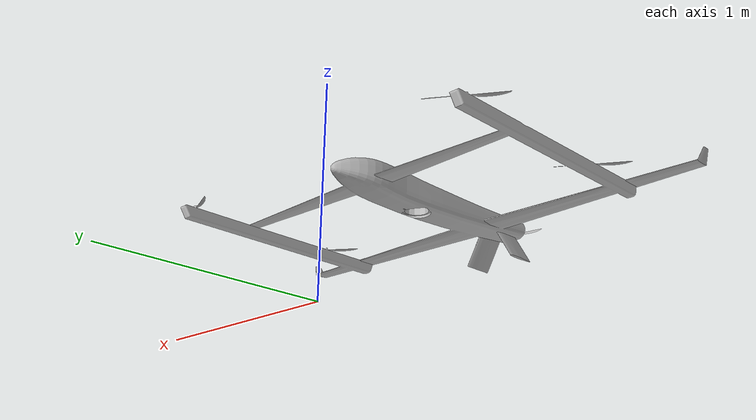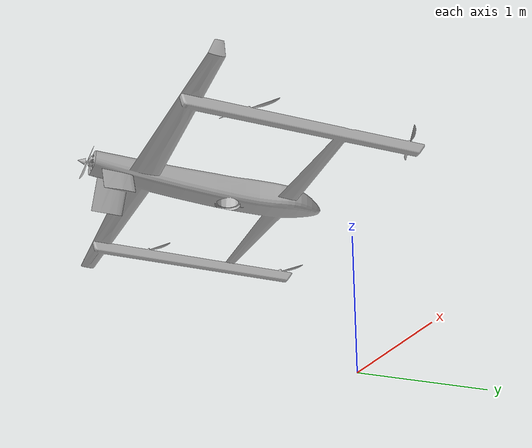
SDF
<sdf version='1.6'>
  <model name='feiji'>
    <link name='base_link'>
      <pose frame=''>0 0 0 0 -0 0</pose>
      <inertial>
        <pose frame=''>0.478428 -0.693665 0.361239 0 -0 0</pose>
        <mass>52.4749</mass>
        <inertia>
          <ixx>22.2086</ixx>
          <ixy>-0.101046</ixy>
          <ixz>0.000688476</ixz>
          <iyy>18.5502</iyy>
          <iyz>-0.0293732</iyz>
          <izz>3.92688</izz>
        </inertia>
      </inertial>
      <collision name='base_link_collision'>
        <pose frame=''>0 0 0 0 -0 0</pose>
        <geometry>
          <mesh>
            <scale>1 1 1</scale>
            <uri>model://feiji/meshes/base_link.STL</uri>
          </mesh>
        </geometry>
      </collision>
      <visual name='base_link_visual'>
        <pose frame=''>0 0 0 0 -0 0</pose>
        <geometry>
          <mesh>
            <scale>1 1 1</scale>
            <uri>model://feiji/meshes/base_link.STL</uri>
          </mesh>
        </geometry>
      </visual>
    </link>
  </model>
</sdf>
